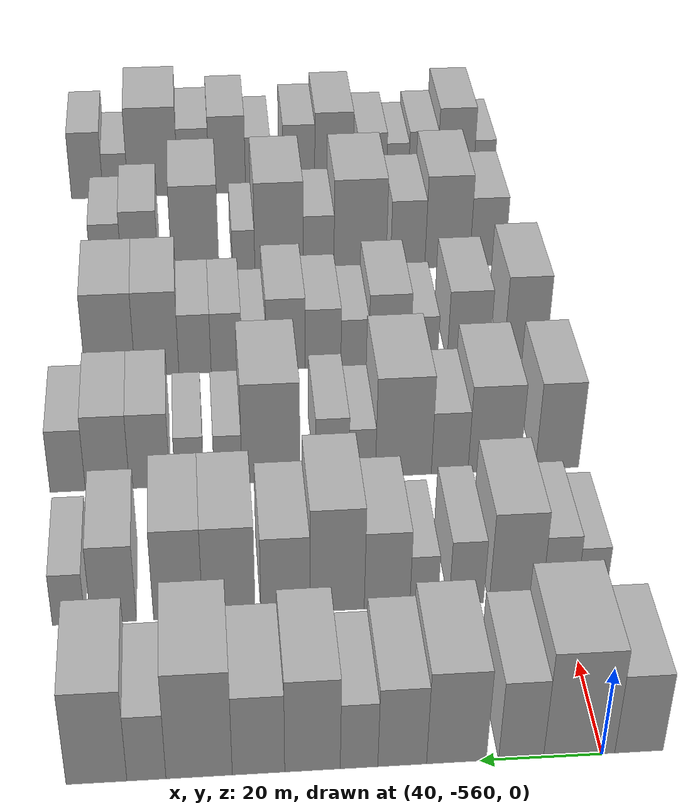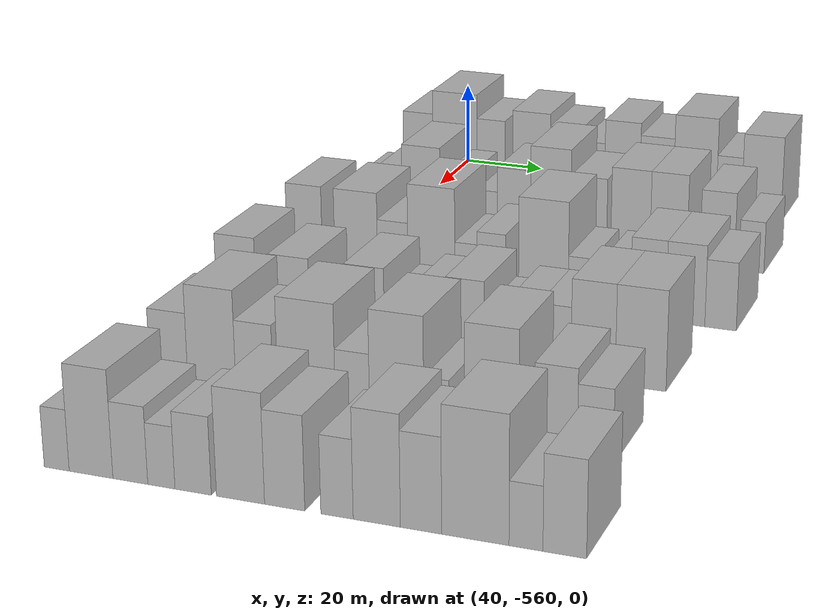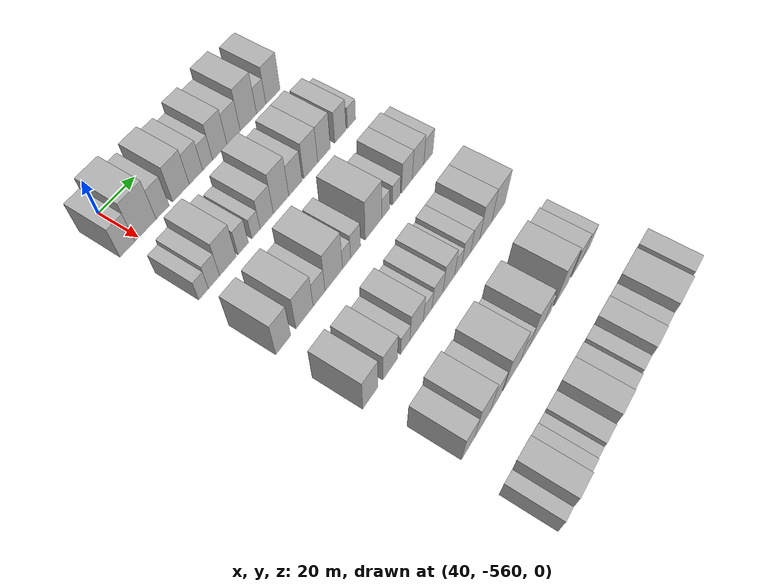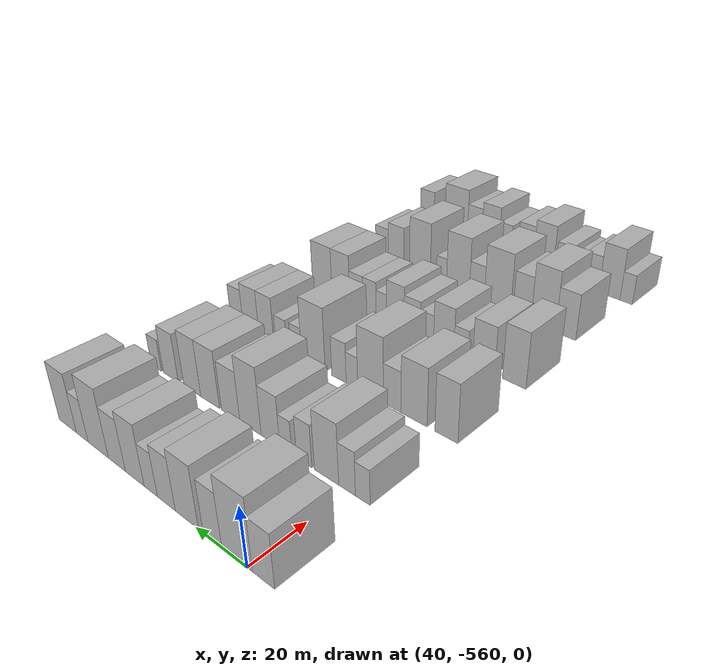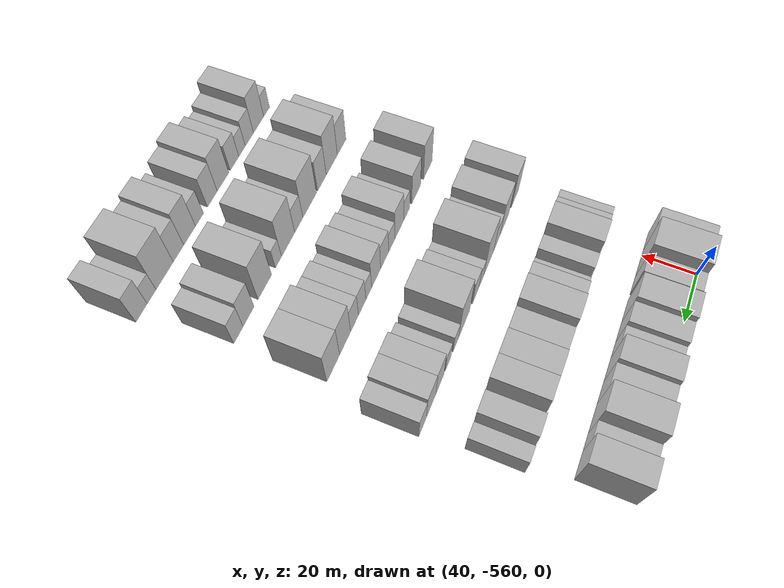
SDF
<sdf version="1.6">
 <world name="default">
  <model name="building_1">
   <static>1</static>
   <pose>50.0000 -566.0285 0 0.000000 0.000000 0.000000</pose>
   <link name="link">
    <pose>0 0 9.00 0 0 0</pose>
    <collision name="collision"><geometry><box><size>20.0000 7.9430 18.0000</size></box></geometry></collision>
    <visual name="visual">
     <cast_shadows>0</cast_shadows>
     <geometry><box><size>20.0000 7.9430 18.0000</size></box></geometry>
     <material>
      <script>
       <uri>model://HANNAS_wall/materials/scripts</uri>
       <uri>model://HANNAS_wall/materials/textures</uri>
       <name>vrc/HANNAS_wall</name>
      </script>
     </material>
    </visual>
   </link>
  </model>
  <model name="building_2">
   <static>1</static>
   <pose>50.0000 -556.2195 0 0.000000 0.000000 0.000000</pose>
   <link name="link">
    <pose>0 0 12.00 0 0 0</pose>
    <collision name="collision"><geometry><box><size>20.0000 11.6750 24.0000</size></box></geometry></collision>
    <visual name="visual">
     <cast_shadows>0</cast_shadows>
     <geometry><box><size>20.0000 11.6750 24.0000</size></box></geometry>
     <material>
      <script>
       <uri>model://HANNAS_wall/materials/scripts</uri>
       <uri>model://HANNAS_wall/materials/textures</uri>
       <name>vrc/HANNAS_wall</name>
      </script>
     </material>
    </visual>
   </link>
  </model>
  <model name="building_3">
   <static>1</static>
   <pose>50.0000 -546.7149 0 0.000000 0.000000 0.000000</pose>
   <link name="link">
    <pose>0 0 9.00 0 0 0</pose>
    <collision name="collision"><geometry><box><size>20.0000 7.3342 18.0000</size></box></geometry></collision>
    <visual name="visual">
     <cast_shadows>0</cast_shadows>
     <geometry><box><size>20.0000 7.3342 18.0000</size></box></geometry>
     <material>
      <script>
       <uri>model://HANNAS_wall/materials/scripts</uri>
       <uri>model://HANNAS_wall/materials/textures</uri>
       <name>vrc/HANNAS_wall</name>
      </script>
     </material>
    </visual>
   </link>
  </model>
  <model name="building_4">
   <static>1</static>
   <pose>50.0000 -536.1963 0 0.000000 0.000000 0.000000</pose>
   <link name="link">
    <pose>0 0 10.50 0 0 0</pose>
    <collision name="collision"><geometry><box><size>20.0000 9.7029 21.0000</size></box></geometry></collision>
    <visual name="visual">
     <cast_shadows>0</cast_shadows>
     <geometry><box><size>20.0000 9.7029 21.0000</size></box></geometry>
     <material>
      <script>
       <uri>model://HANNAS_wall/materials/scripts</uri>
       <uri>model://HANNAS_wall/materials/textures</uri>
       <name>vrc/HANNAS_wall</name>
      </script>
     </material>
    </visual>
   </link>
  </model>
  <model name="building_5">
   <static>1</static>
   <pose>50.0000 -527.3998 0 0.000000 0.000000 0.000000</pose>
   <link name="link">
    <pose>0 0 9.00 0 0 0</pose>
    <collision name="collision"><geometry><box><size>20.0000 7.8903 18.0000</size></box></geometry></collision>
    <visual name="visual">
     <cast_shadows>0</cast_shadows>
     <geometry><box><size>20.0000 7.8903 18.0000</size></box></geometry>
     <material>
      <script>
       <uri>model://HANNAS_wall/materials/scripts</uri>
       <uri>model://HANNAS_wall/materials/textures</uri>
       <name>vrc/HANNAS_wall</name>
      </script>
     </material>
    </visual>
   </link>
  </model>
  <model name="building_6">
   <static>1</static>
   <pose>50.0000 -520.4221 0 0.000000 0.000000 0.000000</pose>
   <link name="link">
    <pose>0 0 7.50 0 0 0</pose>
    <collision name="collision"><geometry><box><size>20.0000 6.0649 15.0000</size></box></geometry></collision>
    <visual name="visual">
     <cast_shadows>0</cast_shadows>
     <geometry><box><size>20.0000 6.0649 15.0000</size></box></geometry>
     <material>
      <script>
       <uri>model://HANNAS_wall/materials/scripts</uri>
       <uri>model://HANNAS_wall/materials/textures</uri>
       <name>vrc/HANNAS_wall</name>
      </script>
     </material>
    </visual>
   </link>
  </model>
  <model name="building_7">
   <static>1</static>
   <pose>50.0000 -512.9245 0 0.000000 0.000000 0.000000</pose>
   <link name="link">
    <pose>0 0 10.50 0 0 0</pose>
    <collision name="collision"><geometry><box><size>20.0000 8.9303 21.0000</size></box></geometry></collision>
    <visual name="visual">
     <cast_shadows>0</cast_shadows>
     <geometry><box><size>20.0000 8.9303 21.0000</size></box></geometry>
     <material>
      <script>
       <uri>model://HANNAS_wall/materials/scripts</uri>
       <uri>model://HANNAS_wall/materials/textures</uri>
       <name>vrc/HANNAS_wall</name>
      </script>
     </material>
    </visual>
   </link>
  </model>
  <model name="building_8">
   <static>1</static>
   <pose>50.0000 -504.2603 0 0.000000 0.000000 0.000000</pose>
   <link name="link">
    <pose>0 0 9.00 0 0 0</pose>
    <collision name="collision"><geometry><box><size>20.0000 8.3981 18.0000</size></box></geometry></collision>
    <visual name="visual">
     <cast_shadows>0</cast_shadows>
     <geometry><box><size>20.0000 8.3981 18.0000</size></box></geometry>
     <material>
      <script>
       <uri>model://HANNAS_wall/materials/scripts</uri>
       <uri>model://HANNAS_wall/materials/textures</uri>
       <name>vrc/HANNAS_wall</name>
      </script>
     </material>
    </visual>
   </link>
  </model>
  <model name="building_9">
   <static>1</static>
   <pose>50.0000 -494.7629 0 0.000000 0.000000 0.000000</pose>
   <link name="link">
    <pose>0 0 12.00 0 0 0</pose>
    <collision name="collision"><geometry><box><size>20.0000 10.5967 24.0000</size></box></geometry></collision>
    <visual name="visual">
     <cast_shadows>0</cast_shadows>
     <geometry><box><size>20.0000 10.5967 24.0000</size></box></geometry>
     <material>
      <script>
       <uri>model://HANNAS_wall/materials/scripts</uri>
       <uri>model://HANNAS_wall/materials/textures</uri>
       <name>vrc/HANNAS_wall</name>
      </script>
     </material>
    </visual>
   </link>
  </model>
  <model name="building_10">
   <static>1</static>
   <pose>50.0000 -486.3562 0 0.000000 0.000000 0.000000</pose>
   <link name="link">
    <pose>0 0 7.50 0 0 0</pose>
    <collision name="collision"><geometry><box><size>20.0000 6.2167 15.0000</size></box></geometry></collision>
    <visual name="visual">
     <cast_shadows>0</cast_shadows>
     <geometry><box><size>20.0000 6.2167 15.0000</size></box></geometry>
     <material>
      <script>
       <uri>model://HANNAS_wall/materials/scripts</uri>
       <uri>model://HANNAS_wall/materials/textures</uri>
       <name>vrc/HANNAS_wall</name>
      </script>
     </material>
    </visual>
   </link>
  </model>
  <model name="building_11">
   <static>1</static>
   <pose>50.0000 -478.4223 0 0.000000 0.000000 0.000000</pose>
   <link name="link">
    <pose>0 0 10.50 0 0 0</pose>
    <collision name="collision"><geometry><box><size>20.0000 9.6512 21.0000</size></box></geometry></collision>
    <visual name="visual">
     <cast_shadows>0</cast_shadows>
     <geometry><box><size>20.0000 9.6512 21.0000</size></box></geometry>
     <material>
      <script>
       <uri>model://HANNAS_wall/materials/scripts</uri>
       <uri>model://HANNAS_wall/materials/textures</uri>
       <name>vrc/HANNAS_wall</name>
      </script>
     </material>
    </visual>
   </link>
  </model>
  <model name="building_129">
   <static>1</static>
   <pose>85.0000 -565.3452 0 0.000000 0.000000 0.000000</pose>
   <link name="link">
    <pose>0 0 6.00 0 0 0</pose>
    <collision name="collision"><geometry><box><size>20.0000 5.3096 12.0000</size></box></geometry></collision>
    <visual name="visual">
     <cast_shadows>0</cast_shadows>
     <geometry><box><size>20.0000 5.3096 12.0000</size></box></geometry>
     <material>
      <script>
       <uri>model://HANNAS_wall/materials/scripts</uri>
       <uri>model://HANNAS_wall/materials/textures</uri>
       <name>vrc/HANNAS_wall</name>
      </script>
     </material>
    </visual>
   </link>
  </model>
  <model name="building_130">
   <static>1</static>
   <pose>85.0000 -559.5644 0 0.000000 0.000000 0.000000</pose>
   <link name="link">
    <pose>0 0 7.50 0 0 0</pose>
    <collision name="collision"><geometry><box><size>20.0000 6.2520 15.0000</size></box></geometry></collision>
    <visual name="visual">
     <cast_shadows>0</cast_shadows>
     <geometry><box><size>20.0000 6.2520 15.0000</size></box></geometry>
     <material>
      <script>
       <uri>model://HANNAS_wall/materials/scripts</uri>
       <uri>model://HANNAS_wall/materials/textures</uri>
       <name>vrc/HANNAS_wall</name>
      </script>
     </material>
    </visual>
   </link>
  </model>
  <model name="building_131">
   <static>1</static>
   <pose>85.0000 -551.7087 0 0.000000 0.000000 0.000000</pose>
   <link name="link">
    <pose>0 0 10.50 0 0 0</pose>
    <collision name="collision"><geometry><box><size>20.0000 9.4594 21.0000</size></box></geometry></collision>
    <visual name="visual">
     <cast_shadows>0</cast_shadows>
     <geometry><box><size>20.0000 9.4594 21.0000</size></box></geometry>
     <material>
      <script>
       <uri>model://HANNAS_wall/materials/scripts</uri>
       <uri>model://HANNAS_wall/materials/textures</uri>
       <name>vrc/HANNAS_wall</name>
      </script>
     </material>
    </visual>
   </link>
  </model>
  <model name="building_132">
   <static>1</static>
   <pose>85.0000 -542.8936 0 0.000000 0.000000 0.000000</pose>
   <link name="link">
    <pose>0 0 7.50 0 0 0</pose>
    <collision name="collision"><geometry><box><size>20.0000 6.1708 15.0000</size></box></geometry></collision>
    <visual name="visual">
     <cast_shadows>0</cast_shadows>
     <geometry><box><size>20.0000 6.1708 15.0000</size></box></geometry>
     <material>
      <script>
       <uri>model://HANNAS_wall/materials/scripts</uri>
       <uri>model://HANNAS_wall/materials/textures</uri>
       <name>vrc/HANNAS_wall</name>
      </script>
     </material>
    </visual>
   </link>
  </model>
  <model name="building_133">
   <static>1</static>
   <pose>85.0000 -535.3028 0 0.000000 0.000000 0.000000</pose>
   <link name="link">
    <pose>0 0 6.00 0 0 0</pose>
    <collision name="collision"><geometry><box><size>20.0000 5.0107 12.0000</size></box></geometry></collision>
    <visual name="visual">
     <cast_shadows>0</cast_shadows>
     <geometry><box><size>20.0000 5.0107 12.0000</size></box></geometry>
     <material>
      <script>
       <uri>model://HANNAS_wall/materials/scripts</uri>
       <uri>model://HANNAS_wall/materials/textures</uri>
       <name>vrc/HANNAS_wall</name>
      </script>
     </material>
    </visual>
   </link>
  </model>
  <model name="building_134">
   <static>1</static>
   <pose>85.0000 -528.7448 0 0.000000 0.000000 0.000000</pose>
   <link name="link">
    <pose>0 0 9.00 0 0 0</pose>
    <collision name="collision"><geometry><box><size>20.0000 8.1053 18.0000</size></box></geometry></collision>
    <visual name="visual">
     <cast_shadows>0</cast_shadows>
     <geometry><box><size>20.0000 8.1053 18.0000</size></box></geometry>
     <material>
      <script>
       <uri>model://HANNAS_wall/materials/scripts</uri>
       <uri>model://HANNAS_wall/materials/textures</uri>
       <name>vrc/HANNAS_wall</name>
      </script>
     </material>
    </visual>
   </link>
  </model>
  <model name="building_135">
   <static>1</static>
   <pose>85.0000 -519.8672 0 0.000000 0.000000 0.000000</pose>
   <link name="link">
    <pose>0 0 12.00 0 0 0</pose>
    <collision name="collision"><geometry><box><size>20.0000 9.6499 24.0000</size></box></geometry></collision>
    <visual name="visual">
     <cast_shadows>0</cast_shadows>
     <geometry><box><size>20.0000 9.6499 24.0000</size></box></geometry>
     <material>
      <script>
       <uri>model://HANNAS_wall/materials/scripts</uri>
       <uri>model://HANNAS_wall/materials/textures</uri>
       <name>vrc/HANNAS_wall</name>
      </script>
     </material>
    </visual>
   </link>
  </model>
  <model name="building_136">
   <static>1</static>
   <pose>85.0000 -510.7346 0 0.000000 0.000000 0.000000</pose>
   <link name="link">
    <pose>0 0 9.00 0 0 0</pose>
    <collision name="collision"><geometry><box><size>20.0000 8.6154 18.0000</size></box></geometry></collision>
    <visual name="visual">
     <cast_shadows>0</cast_shadows>
     <geometry><box><size>20.0000 8.6154 18.0000</size></box></geometry>
     <material>
      <script>
       <uri>model://HANNAS_wall/materials/scripts</uri>
       <uri>model://HANNAS_wall/materials/textures</uri>
       <name>vrc/HANNAS_wall</name>
      </script>
     </material>
    </visual>
   </link>
  </model>
  <model name="building_137">
   <static>1</static>
   <pose>85.0000 -500.8029 0 0.000000 0.000000 0.000000</pose>
   <link name="link">
    <pose>0 0 10.50 0 0 0</pose>
    <collision name="collision"><geometry><box><size>20.0000 9.2479 21.0000</size></box></geometry></collision>
    <visual name="visual">
     <cast_shadows>0</cast_shadows>
     <geometry><box><size>20.0000 9.2479 21.0000</size></box></geometry>
     <material>
      <script>
       <uri>model://HANNAS_wall/materials/scripts</uri>
       <uri>model://HANNAS_wall/materials/textures</uri>
       <name>vrc/HANNAS_wall</name>
      </script>
     </material>
    </visual>
   </link>
  </model>
  <model name="building_138">
   <static>1</static>
   <pose>85.0000 -491.8691 0 0.000000 0.000000 0.000000</pose>
   <link name="link">
    <pose>0 0 10.50 0 0 0</pose>
    <collision name="collision"><geometry><box><size>20.0000 8.6196 21.0000</size></box></geometry></collision>
    <visual name="visual">
     <cast_shadows>0</cast_shadows>
     <geometry><box><size>20.0000 8.6196 21.0000</size></box></geometry>
     <material>
      <script>
       <uri>model://HANNAS_wall/materials/scripts</uri>
       <uri>model://HANNAS_wall/materials/textures</uri>
       <name>vrc/HANNAS_wall</name>
      </script>
     </material>
    </visual>
   </link>
  </model>
  <model name="building_139">
   <static>1</static>
   <pose>85.0000 -480.5808 0 0.000000 0.000000 0.000000</pose>
   <link name="link">
    <pose>0 0 9.00 0 0 0</pose>
    <collision name="collision"><geometry><box><size>20.0000 7.9571 18.0000</size></box></geometry></collision>
    <visual name="visual">
     <cast_shadows>0</cast_shadows>
     <geometry><box><size>20.0000 7.9571 18.0000</size></box></geometry>
     <material>
      <script>
       <uri>model://HANNAS_wall/materials/scripts</uri>
       <uri>model://HANNAS_wall/materials/textures</uri>
       <name>vrc/HANNAS_wall</name>
      </script>
     </material>
    </visual>
   </link>
  </model>
  <model name="building_140">
   <static>1</static>
   <pose>85.0000 -472.7395 0 0.000000 0.000000 0.000000</pose>
   <link name="link">
    <pose>0 0 6.00 0 0 0</pose>
    <collision name="collision"><geometry><box><size>20.0000 5.7256 12.0000</size></box></geometry></collision>
    <visual name="visual">
     <cast_shadows>0</cast_shadows>
     <geometry><box><size>20.0000 5.7256 12.0000</size></box></geometry>
     <material>
      <script>
       <uri>model://HANNAS_wall/materials/scripts</uri>
       <uri>model://HANNAS_wall/materials/textures</uri>
       <name>vrc/HANNAS_wall</name>
      </script>
     </material>
    </visual>
   </link>
  </model>
  <model name="building_266">
   <static>1</static>
   <pose>120.0000 -565.7514 0 0.000000 0.000000 0.000000</pose>
   <link name="link">
    <pose>0 0 10.50 0 0 0</pose>
    <collision name="collision"><geometry><box><size>20.0000 8.4971 21.0000</size></box></geometry></collision>
    <visual name="visual">
     <cast_shadows>0</cast_shadows>
     <geometry><box><size>20.0000 8.4971 21.0000</size></box></geometry>
     <material>
      <script>
       <uri>model://HANNAS_wall/materials/scripts</uri>
       <uri>model://HANNAS_wall/materials/textures</uri>
       <name>vrc/HANNAS_wall</name>
      </script>
     </material>
    </visual>
   </link>
  </model>
  <model name="building_267">
   <static>1</static>
   <pose>120.0000 -553.4147 0 0.000000 0.000000 0.000000</pose>
   <link name="link">
    <pose>0 0 10.50 0 0 0</pose>
    <collision name="collision"><geometry><box><size>20.0000 10.1763 21.0000</size></box></geometry></collision>
    <visual name="visual">
     <cast_shadows>0</cast_shadows>
     <geometry><box><size>20.0000 10.1763 21.0000</size></box></geometry>
     <material>
      <script>
       <uri>model://HANNAS_wall/materials/scripts</uri>
       <uri>model://HANNAS_wall/materials/textures</uri>
       <name>vrc/HANNAS_wall</name>
      </script>
     </material>
    </visual>
   </link>
  </model>
  <model name="building_268">
   <static>1</static>
   <pose>120.0000 -544.7502 0 0.000000 0.000000 0.000000</pose>
   <link name="link">
    <pose>0 0 7.50 0 0 0</pose>
    <collision name="collision"><geometry><box><size>20.0000 7.1528 15.0000</size></box></geometry></collision>
    <visual name="visual">
     <cast_shadows>0</cast_shadows>
     <geometry><box><size>20.0000 7.1528 15.0000</size></box></geometry>
     <material>
      <script>
       <uri>model://HANNAS_wall/materials/scripts</uri>
       <uri>model://HANNAS_wall/materials/textures</uri>
       <name>vrc/HANNAS_wall</name>
      </script>
     </material>
    </visual>
   </link>
  </model>
  <model name="building_269">
   <static>1</static>
   <pose>120.0000 -535.7290 0 0.000000 0.000000 0.000000</pose>
   <link name="link">
    <pose>0 0 12.00 0 0 0</pose>
    <collision name="collision"><geometry><box><size>20.0000 10.8894 24.0000</size></box></geometry></collision>
    <visual name="visual">
     <cast_shadows>0</cast_shadows>
     <geometry><box><size>20.0000 10.8894 24.0000</size></box></geometry>
     <material>
      <script>
       <uri>model://HANNAS_wall/materials/scripts</uri>
       <uri>model://HANNAS_wall/materials/textures</uri>
       <name>vrc/HANNAS_wall</name>
      </script>
     </material>
    </visual>
   </link>
  </model>
  <model name="building_270">
   <static>1</static>
   <pose>120.0000 -527.7327 0 0.000000 0.000000 0.000000</pose>
   <link name="link">
    <pose>0 0 6.00 0 0 0</pose>
    <collision name="collision"><geometry><box><size>20.0000 5.1034 12.0000</size></box></geometry></collision>
    <visual name="visual">
     <cast_shadows>0</cast_shadows>
     <geometry><box><size>20.0000 5.1034 12.0000</size></box></geometry>
     <material>
      <script>
       <uri>model://HANNAS_wall/materials/scripts</uri>
       <uri>model://HANNAS_wall/materials/textures</uri>
       <name>vrc/HANNAS_wall</name>
      </script>
     </material>
    </visual>
   </link>
  </model>
  <model name="building_271">
   <static>1</static>
   <pose>120.0000 -521.9417 0 0.000000 0.000000 0.000000</pose>
   <link name="link">
    <pose>0 0 7.50 0 0 0</pose>
    <collision name="collision"><geometry><box><size>20.0000 6.4785 15.0000</size></box></geometry></collision>
    <visual name="visual">
     <cast_shadows>0</cast_shadows>
     <geometry><box><size>20.0000 6.4785 15.0000</size></box></geometry>
     <material>
      <script>
       <uri>model://HANNAS_wall/materials/scripts</uri>
       <uri>model://HANNAS_wall/materials/textures</uri>
       <name>vrc/HANNAS_wall</name>
      </script>
     </material>
    </visual>
   </link>
  </model>
  <model name="building_272">
   <static>1</static>
   <pose>120.0000 -510.1349 0 0.000000 0.000000 0.000000</pose>
   <link name="link">
    <pose>0 0 12.00 0 0 0</pose>
    <collision name="collision"><geometry><box><size>20.0000 11.1351 24.0000</size></box></geometry></collision>
    <visual name="visual">
     <cast_shadows>0</cast_shadows>
     <geometry><box><size>20.0000 11.1351 24.0000</size></box></geometry>
     <material>
      <script>
       <uri>model://HANNAS_wall/materials/scripts</uri>
       <uri>model://HANNAS_wall/materials/textures</uri>
       <name>vrc/HANNAS_wall</name>
      </script>
     </material>
    </visual>
   </link>
  </model>
  <model name="building_273">
   <static>1</static>
   <pose>120.0000 -501.9094 0 0.000000 0.000000 0.000000</pose>
   <link name="link">
    <pose>0 0 6.00 0 0 0</pose>
    <collision name="collision"><geometry><box><size>20.0000 5.3159 12.0000</size></box></geometry></collision>
    <visual name="visual">
     <cast_shadows>0</cast_shadows>
     <geometry><box><size>20.0000 5.3159 12.0000</size></box></geometry>
     <material>
      <script>
       <uri>model://HANNAS_wall/materials/scripts</uri>
       <uri>model://HANNAS_wall/materials/textures</uri>
       <name>vrc/HANNAS_wall</name>
      </script>
     </material>
    </visual>
   </link>
  </model>
  <model name="building_274">
   <static>1</static>
   <pose>120.0000 -494.5087 0 0.000000 0.000000 0.000000</pose>
   <link name="link">
    <pose>0 0 6.00 0 0 0</pose>
    <collision name="collision"><geometry><box><size>20.0000 5.4855 12.0000</size></box></geometry></collision>
    <visual name="visual">
     <cast_shadows>0</cast_shadows>
     <geometry><box><size>20.0000 5.4855 12.0000</size></box></geometry>
     <material>
      <script>
       <uri>model://HANNAS_wall/materials/scripts</uri>
       <uri>model://HANNAS_wall/materials/textures</uri>
       <name>vrc/HANNAS_wall</name>
      </script>
     </material>
    </visual>
   </link>
  </model>
  <model name="building_275">
   <static>1</static>
   <pose>120.0000 -486.8834 0 0.000000 0.000000 0.000000</pose>
   <link name="link">
    <pose>0 0 9.00 0 0 0</pose>
    <collision name="collision"><geometry><box><size>20.0000 7.7651 18.0000</size></box></geometry></collision>
    <visual name="visual">
     <cast_shadows>0</cast_shadows>
     <geometry><box><size>20.0000 7.7651 18.0000</size></box></geometry>
     <material>
      <script>
       <uri>model://HANNAS_wall/materials/scripts</uri>
       <uri>model://HANNAS_wall/materials/textures</uri>
       <name>vrc/HANNAS_wall</name>
      </script>
     </material>
    </visual>
   </link>
  </model>
  <model name="building_276">
   <static>1</static>
   <pose>120.0000 -478.7913 0 0.000000 0.000000 0.000000</pose>
   <link name="link">
    <pose>0 0 9.00 0 0 0</pose>
    <collision name="collision"><geometry><box><size>20.0000 8.4190 18.0000</size></box></geometry></collision>
    <visual name="visual">
     <cast_shadows>0</cast_shadows>
     <geometry><box><size>20.0000 8.4190 18.0000</size></box></geometry>
     <material>
      <script>
       <uri>model://HANNAS_wall/materials/scripts</uri>
       <uri>model://HANNAS_wall/materials/textures</uri>
       <name>vrc/HANNAS_wall</name>
      </script>
     </material>
    </visual>
   </link>
  </model>
  <model name="building_277">
   <static>1</static>
   <pose>120.0000 -471.2221 0 0.000000 0.000000 0.000000</pose>
   <link name="link">
    <pose>0 0 7.50 0 0 0</pose>
    <collision name="collision"><geometry><box><size>20.0000 6.7194 15.0000</size></box></geometry></collision>
    <visual name="visual">
     <cast_shadows>0</cast_shadows>
     <geometry><box><size>20.0000 6.7194 15.0000</size></box></geometry>
     <material>
      <script>
       <uri>model://HANNAS_wall/materials/scripts</uri>
       <uri>model://HANNAS_wall/materials/textures</uri>
       <name>vrc/HANNAS_wall</name>
      </script>
     </material>
    </visual>
   </link>
  </model>
  <model name="building_391">
   <static>1</static>
   <pose>155.0000 -565.4964 0 0.000000 0.000000 0.000000</pose>
   <link name="link">
    <pose>0 0 10.50 0 0 0</pose>
    <collision name="collision"><geometry><box><size>20.0000 9.0072 21.0000</size></box></geometry></collision>
    <visual name="visual">
     <cast_shadows>0</cast_shadows>
     <geometry><box><size>20.0000 9.0072 21.0000</size></box></geometry>
     <material>
      <script>
       <uri>model://HANNAS_wall/materials/scripts</uri>
       <uri>model://HANNAS_wall/materials/textures</uri>
       <name>vrc/HANNAS_wall</name>
      </script>
     </material>
    </visual>
   </link>
  </model>
  <model name="building_392">
   <static>1</static>
   <pose>155.0000 -553.5163 0 0.000000 0.000000 0.000000</pose>
   <link name="link">
    <pose>0 0 9.00 0 0 0</pose>
    <collision name="collision"><geometry><box><size>20.0000 8.9529 18.0000</size></box></geometry></collision>
    <visual name="visual">
     <cast_shadows>0</cast_shadows>
     <geometry><box><size>20.0000 8.9529 18.0000</size></box></geometry>
     <material>
      <script>
       <uri>model://HANNAS_wall/materials/scripts</uri>
       <uri>model://HANNAS_wall/materials/textures</uri>
       <name>vrc/HANNAS_wall</name>
      </script>
     </material>
    </visual>
   </link>
  </model>
  <model name="building_393">
   <static>1</static>
   <pose>155.0000 -544.1356 0 0.000000 0.000000 0.000000</pose>
   <link name="link">
    <pose>0 0 6.00 0 0 0</pose>
    <collision name="collision"><geometry><box><size>20.0000 5.8086 12.0000</size></box></geometry></collision>
    <visual name="visual">
     <cast_shadows>0</cast_shadows>
     <geometry><box><size>20.0000 5.8086 12.0000</size></box></geometry>
     <material>
      <script>
       <uri>model://HANNAS_wall/materials/scripts</uri>
       <uri>model://HANNAS_wall/materials/textures</uri>
       <name>vrc/HANNAS_wall</name>
      </script>
     </material>
    </visual>
   </link>
  </model>
  <model name="building_394">
   <static>1</static>
   <pose>155.0000 -536.8583 0 0.000000 0.000000 0.000000</pose>
   <link name="link">
    <pose>0 0 9.00 0 0 0</pose>
    <collision name="collision"><geometry><box><size>20.0000 8.7461 18.0000</size></box></geometry></collision>
    <visual name="visual">
     <cast_shadows>0</cast_shadows>
     <geometry><box><size>20.0000 8.7461 18.0000</size></box></geometry>
     <material>
      <script>
       <uri>model://HANNAS_wall/materials/scripts</uri>
       <uri>model://HANNAS_wall/materials/textures</uri>
       <name>vrc/HANNAS_wall</name>
      </script>
     </material>
    </visual>
   </link>
  </model>
  <model name="building_395">
   <static>1</static>
   <pose>155.0000 -529.5819 0 0.000000 0.000000 0.000000</pose>
   <link name="link">
    <pose>0 0 6.00 0 0 0</pose>
    <collision name="collision"><geometry><box><size>20.0000 5.8067 12.0000</size></box></geometry></collision>
    <visual name="visual">
     <cast_shadows>0</cast_shadows>
     <geometry><box><size>20.0000 5.8067 12.0000</size></box></geometry>
     <material>
      <script>
       <uri>model://HANNAS_wall/materials/scripts</uri>
       <uri>model://HANNAS_wall/materials/textures</uri>
       <name>vrc/HANNAS_wall</name>
      </script>
     </material>
    </visual>
   </link>
  </model>
  <model name="building_396">
   <static>1</static>
   <pose>155.0000 -522.9556 0 0.000000 0.000000 0.000000</pose>
   <link name="link">
    <pose>0 0 7.50 0 0 0</pose>
    <collision name="collision"><geometry><box><size>20.0000 7.4459 15.0000</size></box></geometry></collision>
    <visual name="visual">
     <cast_shadows>0</cast_shadows>
     <geometry><box><size>20.0000 7.4459 15.0000</size></box></geometry>
     <material>
      <script>
       <uri>model://HANNAS_wall/materials/scripts</uri>
       <uri>model://HANNAS_wall/materials/textures</uri>
       <name>vrc/HANNAS_wall</name>
      </script>
     </material>
    </visual>
   </link>
  </model>
  <model name="building_397">
   <static>1</static>
   <pose>155.0000 -515.1526 0 0.000000 0.000000 0.000000</pose>
   <link name="link">
    <pose>0 0 9.00 0 0 0</pose>
    <collision name="collision"><geometry><box><size>20.0000 8.1601 18.0000</size></box></geometry></collision>
    <visual name="visual">
     <cast_shadows>0</cast_shadows>
     <geometry><box><size>20.0000 8.1601 18.0000</size></box></geometry>
     <material>
      <script>
       <uri>model://HANNAS_wall/materials/scripts</uri>
       <uri>model://HANNAS_wall/materials/textures</uri>
       <name>vrc/HANNAS_wall</name>
      </script>
     </material>
    </visual>
   </link>
  </model>
  <model name="building_398">
   <static>1</static>
   <pose>155.0000 -508.5526 0 0.000000 0.000000 0.000000</pose>
   <link name="link">
    <pose>0 0 6.00 0 0 0</pose>
    <collision name="collision"><geometry><box><size>20.0000 5.0399 12.0000</size></box></geometry></collision>
    <visual name="visual">
     <cast_shadows>0</cast_shadows>
     <geometry><box><size>20.0000 5.0399 12.0000</size></box></geometry>
     <material>
      <script>
       <uri>model://HANNAS_wall/materials/scripts</uri>
       <uri>model://HANNAS_wall/materials/textures</uri>
       <name>vrc/HANNAS_wall</name>
      </script>
     </material>
    </visual>
   </link>
  </model>
  <model name="building_399">
   <static>1</static>
   <pose>155.0000 -502.8167 0 0.000000 0.000000 0.000000</pose>
   <link name="link">
    <pose>0 0 7.50 0 0 0</pose>
    <collision name="collision"><geometry><box><size>20.0000 6.4318 15.0000</size></box></geometry></collision>
    <visual name="visual">
     <cast_shadows>0</cast_shadows>
     <geometry><box><size>20.0000 6.4318 15.0000</size></box></geometry>
     <material>
      <script>
       <uri>model://HANNAS_wall/materials/scripts</uri>
       <uri>model://HANNAS_wall/materials/textures</uri>
       <name>vrc/HANNAS_wall</name>
      </script>
     </material>
    </visual>
   </link>
  </model>
  <model name="building_400">
   <static>1</static>
   <pose>155.0000 -496.2580 0 0.000000 0.000000 0.000000</pose>
   <link name="link">
    <pose>0 0 7.50 0 0 0</pose>
    <collision name="collision"><geometry><box><size>20.0000 6.6856 15.0000</size></box></geometry></collision>
    <visual name="visual">
     <cast_shadows>0</cast_shadows>
     <geometry><box><size>20.0000 6.6856 15.0000</size></box></geometry>
     <material>
      <script>
       <uri>model://HANNAS_wall/materials/scripts</uri>
       <uri>model://HANNAS_wall/materials/textures</uri>
       <name>vrc/HANNAS_wall</name>
      </script>
     </material>
    </visual>
   </link>
  </model>
  <model name="building_401">
   <static>1</static>
   <pose>155.0000 -488.3630 0 0.000000 0.000000 0.000000</pose>
   <link name="link">
    <pose>0 0 10.50 0 0 0</pose>
    <collision name="collision"><geometry><box><size>20.0000 9.1043 21.0000</size></box></geometry></collision>
    <visual name="visual">
     <cast_shadows>0</cast_shadows>
     <geometry><box><size>20.0000 9.1043 21.0000</size></box></geometry>
     <material>
      <script>
       <uri>model://HANNAS_wall/materials/scripts</uri>
       <uri>model://HANNAS_wall/materials/textures</uri>
       <name>vrc/HANNAS_wall</name>
      </script>
     </material>
    </visual>
   </link>
  </model>
  <model name="building_402">
   <static>1</static>
   <pose>155.0000 -478.6676 0 0.000000 0.000000 0.000000</pose>
   <link name="link">
    <pose>0 0 10.50 0 0 0</pose>
    <collision name="collision"><geometry><box><size>20.0000 10.2865 21.0000</size></box></geometry></collision>
    <visual name="visual">
     <cast_shadows>0</cast_shadows>
     <geometry><box><size>20.0000 10.2865 21.0000</size></box></geometry>
     <material>
      <script>
       <uri>model://HANNAS_wall/materials/scripts</uri>
       <uri>model://HANNAS_wall/materials/textures</uri>
       <name>vrc/HANNAS_wall</name>
      </script>
     </material>
    </visual>
   </link>
  </model>
  <model name="building_520">
   <static>1</static>
   <pose>190.0000 -562.9608 0 0.000000 0.000000 0.000000</pose>
   <link name="link">
    <pose>0 0 9.00 0 0 0</pose>
    <collision name="collision"><geometry><box><size>20.0000 8.0785 18.0000</size></box></geometry></collision>
    <visual name="visual">
     <cast_shadows>0</cast_shadows>
     <geometry><box><size>20.0000 8.0785 18.0000</size></box></geometry>
     <material>
      <script>
       <uri>model://HANNAS_wall/materials/scripts</uri>
       <uri>model://HANNAS_wall/materials/textures</uri>
       <name>vrc/HANNAS_wall</name>
      </script>
     </material>
    </visual>
   </link>
  </model>
  <model name="building_521">
   <static>1</static>
   <pose>190.0000 -553.8332 0 0.000000 0.000000 0.000000</pose>
   <link name="link">
    <pose>0 0 12.00 0 0 0</pose>
    <collision name="collision"><geometry><box><size>20.0000 10.1767 24.0000</size></box></geometry></collision>
    <visual name="visual">
     <cast_shadows>0</cast_shadows>
     <geometry><box><size>20.0000 10.1767 24.0000</size></box></geometry>
     <material>
      <script>
       <uri>model://HANNAS_wall/materials/scripts</uri>
       <uri>model://HANNAS_wall/materials/textures</uri>
       <name>vrc/HANNAS_wall</name>
      </script>
     </material>
    </visual>
   </link>
  </model>
  <model name="building_522">
   <static>1</static>
   <pose>190.0000 -544.8478 0 0.000000 0.000000 0.000000</pose>
   <link name="link">
    <pose>0 0 9.00 0 0 0</pose>
    <collision name="collision"><geometry><box><size>20.0000 7.7941 18.0000</size></box></geometry></collision>
    <visual name="visual">
     <cast_shadows>0</cast_shadows>
     <geometry><box><size>20.0000 7.7941 18.0000</size></box></geometry>
     <material>
      <script>
       <uri>model://HANNAS_wall/materials/scripts</uri>
       <uri>model://HANNAS_wall/materials/textures</uri>
       <name>vrc/HANNAS_wall</name>
      </script>
     </material>
    </visual>
   </link>
  </model>
  <model name="building_523">
   <static>1</static>
   <pose>190.0000 -534.0508 0 0.000000 0.000000 0.000000</pose>
   <link name="link">
    <pose>0 0 12.00 0 0 0</pose>
    <collision name="collision"><geometry><box><size>20.0000 11.8000 24.0000</size></box></geometry></collision>
    <visual name="visual">
     <cast_shadows>0</cast_shadows>
     <geometry><box><size>20.0000 11.8000 24.0000</size></box></geometry>
     <material>
      <script>
       <uri>model://HANNAS_wall/materials/scripts</uri>
       <uri>model://HANNAS_wall/materials/textures</uri>
       <name>vrc/HANNAS_wall</name>
      </script>
     </material>
    </visual>
   </link>
  </model>
  <model name="building_524">
   <static>1</static>
   <pose>190.0000 -524.6913 0 0.000000 0.000000 0.000000</pose>
   <link name="link">
    <pose>0 0 7.50 0 0 0</pose>
    <collision name="collision"><geometry><box><size>20.0000 6.9191 15.0000</size></box></geometry></collision>
    <visual name="visual">
     <cast_shadows>0</cast_shadows>
     <geometry><box><size>20.0000 6.9191 15.0000</size></box></geometry>
     <material>
      <script>
       <uri>model://HANNAS_wall/materials/scripts</uri>
       <uri>model://HANNAS_wall/materials/textures</uri>
       <name>vrc/HANNAS_wall</name>
      </script>
     </material>
    </visual>
   </link>
  </model>
  <model name="building_525">
   <static>1</static>
   <pose>190.0000 -515.8108 0 0.000000 0.000000 0.000000</pose>
   <link name="link">
    <pose>0 0 12.00 0 0 0</pose>
    <collision name="collision"><geometry><box><size>20.0000 10.8419 24.0000</size></box></geometry></collision>
    <visual name="visual">
     <cast_shadows>0</cast_shadows>
     <geometry><box><size>20.0000 10.8419 24.0000</size></box></geometry>
     <material>
      <script>
       <uri>model://HANNAS_wall/materials/scripts</uri>
       <uri>model://HANNAS_wall/materials/textures</uri>
       <name>vrc/HANNAS_wall</name>
      </script>
     </material>
    </visual>
   </link>
  </model>
  <model name="building_526">
   <static>1</static>
   <pose>190.0000 -507.8895 0 0.000000 0.000000 0.000000</pose>
   <link name="link">
    <pose>0 0 6.00 0 0 0</pose>
    <collision name="collision"><geometry><box><size>20.0000 5.0006 12.0000</size></box></geometry></collision>
    <visual name="visual">
     <cast_shadows>0</cast_shadows>
     <geometry><box><size>20.0000 5.0006 12.0000</size></box></geometry>
     <material>
      <script>
       <uri>model://HANNAS_wall/materials/scripts</uri>
       <uri>model://HANNAS_wall/materials/textures</uri>
       <name>vrc/HANNAS_wall</name>
      </script>
     </material>
    </visual>
   </link>
  </model>
  <model name="building_527">
   <static>1</static>
   <pose>190.0000 -497.1279 0 0.000000 0.000000 0.000000</pose>
   <link name="link">
    <pose>0 0 12.00 0 0 0</pose>
    <collision name="collision"><geometry><box><size>20.0000 10.5227 24.0000</size></box></geometry></collision>
    <visual name="visual">
     <cast_shadows>0</cast_shadows>
     <geometry><box><size>20.0000 10.5227 24.0000</size></box></geometry>
     <material>
      <script>
       <uri>model://HANNAS_wall/materials/scripts</uri>
       <uri>model://HANNAS_wall/materials/textures</uri>
       <name>vrc/HANNAS_wall</name>
      </script>
     </material>
    </visual>
   </link>
  </model>
  <model name="building_528">
   <static>1</static>
   <pose>190.0000 -484.7870 0 0.000000 0.000000 0.000000</pose>
   <link name="link">
    <pose>0 0 9.00 0 0 0</pose>
    <collision name="collision"><geometry><box><size>20.0000 8.1590 18.0000</size></box></geometry></collision>
    <visual name="visual">
     <cast_shadows>0</cast_shadows>
     <geometry><box><size>20.0000 8.1590 18.0000</size></box></geometry>
     <material>
      <script>
       <uri>model://HANNAS_wall/materials/scripts</uri>
       <uri>model://HANNAS_wall/materials/textures</uri>
       <name>vrc/HANNAS_wall</name>
      </script>
     </material>
    </visual>
   </link>
  </model>
  <model name="building_529">
   <static>1</static>
   <pose>190.0000 -477.3109 0 0.000000 0.000000 0.000000</pose>
   <link name="link">
    <pose>0 0 7.50 0 0 0</pose>
    <collision name="collision"><geometry><box><size>20.0000 6.7932 15.0000</size></box></geometry></collision>
    <visual name="visual">
     <cast_shadows>0</cast_shadows>
     <geometry><box><size>20.0000 6.7932 15.0000</size></box></geometry>
     <material>
      <script>
       <uri>model://HANNAS_wall/materials/scripts</uri>
       <uri>model://HANNAS_wall/materials/textures</uri>
       <name>vrc/HANNAS_wall</name>
      </script>
     </material>
    </visual>
   </link>
  </model>
  <model name="building_648">
   <static>1</static>
   <pose>225.0000 -567.4641 0 0.000000 0.000000 0.000000</pose>
   <link name="link">
    <pose>0 0 6.00 0 0 0</pose>
    <collision name="collision"><geometry><box><size>20.0000 5.0717 12.0000</size></box></geometry></collision>
    <visual name="visual">
     <cast_shadows>0</cast_shadows>
     <geometry><box><size>20.0000 5.0717 12.0000</size></box></geometry>
     <material>
      <script>
       <uri>model://HANNAS_wall/materials/scripts</uri>
       <uri>model://HANNAS_wall/materials/textures</uri>
       <name>vrc/HANNAS_wall</name>
      </script>
     </material>
    </visual>
   </link>
  </model>
  <model name="building_649">
   <static>1</static>
   <pose>225.0000 -560.5181 0 0.000000 0.000000 0.000000</pose>
   <link name="link">
    <pose>0 0 10.50 0 0 0</pose>
    <collision name="collision"><geometry><box><size>20.0000 8.8202 21.0000</size></box></geometry></collision>
    <visual name="visual">
     <cast_shadows>0</cast_shadows>
     <geometry><box><size>20.0000 8.8202 21.0000</size></box></geometry>
     <material>
      <script>
       <uri>model://HANNAS_wall/materials/scripts</uri>
       <uri>model://HANNAS_wall/materials/textures</uri>
       <name>vrc/HANNAS_wall</name>
      </script>
     </material>
    </visual>
   </link>
  </model>
  <model name="building_650">
   <static>1</static>
   <pose>225.0000 -552.6339 0 0.000000 0.000000 0.000000</pose>
   <link name="link">
    <pose>0 0 7.50 0 0 0</pose>
    <collision name="collision"><geometry><box><size>20.0000 6.9482 15.0000</size></box></geometry></collision>
    <visual name="visual">
     <cast_shadows>0</cast_shadows>
     <geometry><box><size>20.0000 6.9482 15.0000</size></box></geometry>
     <material>
      <script>
       <uri>model://HANNAS_wall/materials/scripts</uri>
       <uri>model://HANNAS_wall/materials/textures</uri>
       <name>vrc/HANNAS_wall</name>
      </script>
     </material>
    </visual>
   </link>
  </model>
  <model name="building_651">
   <static>1</static>
   <pose>225.0000 -546.4757 0 0.000000 0.000000 0.000000</pose>
   <link name="link">
    <pose>0 0 6.00 0 0 0</pose>
    <collision name="collision"><geometry><box><size>20.0000 5.3682 12.0000</size></box></geometry></collision>
    <visual name="visual">
     <cast_shadows>0</cast_shadows>
     <geometry><box><size>20.0000 5.3682 12.0000</size></box></geometry>
     <material>
      <script>
       <uri>model://HANNAS_wall/materials/scripts</uri>
       <uri>model://HANNAS_wall/materials/textures</uri>
       <name>vrc/HANNAS_wall</name>
      </script>
     </material>
    </visual>
   </link>
  </model>
  <model name="building_652">
   <static>1</static>
   <pose>225.0000 -540.2495 0 0.000000 0.000000 0.000000</pose>
   <link name="link">
    <pose>0 0 7.50 0 0 0</pose>
    <collision name="collision"><geometry><box><size>20.0000 7.0842 15.0000</size></box></geometry></collision>
    <visual name="visual">
     <cast_shadows>0</cast_shadows>
     <geometry><box><size>20.0000 7.0842 15.0000</size></box></geometry>
     <material>
      <script>
       <uri>model://HANNAS_wall/materials/scripts</uri>
       <uri>model://HANNAS_wall/materials/textures</uri>
       <name>vrc/HANNAS_wall</name>
      </script>
     </material>
    </visual>
   </link>
  </model>
  <model name="building_653">
   <static>1</static>
   <pose>225.0000 -531.0886 0 0.000000 0.000000 0.000000</pose>
   <link name="link">
    <pose>0 0 10.50 0 0 0</pose>
    <collision name="collision"><geometry><box><size>20.0000 9.2376 21.0000</size></box></geometry></collision>
    <visual name="visual">
     <cast_shadows>0</cast_shadows>
     <geometry><box><size>20.0000 9.2376 21.0000</size></box></geometry>
     <material>
      <script>
       <uri>model://HANNAS_wall/materials/scripts</uri>
       <uri>model://HANNAS_wall/materials/textures</uri>
       <name>vrc/HANNAS_wall</name>
      </script>
     </material>
    </visual>
   </link>
  </model>
  <model name="building_654">
   <static>1</static>
   <pose>225.0000 -522.6579 0 0.000000 0.000000 0.000000</pose>
   <link name="link">
    <pose>0 0 9.00 0 0 0</pose>
    <collision name="collision"><geometry><box><size>20.0000 7.6237 18.0000</size></box></geometry></collision>
    <visual name="visual">
     <cast_shadows>0</cast_shadows>
     <geometry><box><size>20.0000 7.6237 18.0000</size></box></geometry>
     <material>
      <script>
       <uri>model://HANNAS_wall/materials/scripts</uri>
       <uri>model://HANNAS_wall/materials/textures</uri>
       <name>vrc/HANNAS_wall</name>
      </script>
     </material>
    </visual>
   </link>
  </model>
  <model name="building_655">
   <static>1</static>
   <pose>225.0000 -512.8359 0 0.000000 0.000000 0.000000</pose>
   <link name="link">
    <pose>0 0 7.50 0 0 0</pose>
    <collision name="collision"><geometry><box><size>20.0000 6.0203 15.0000</size></box></geometry></collision>
    <visual name="visual">
     <cast_shadows>0</cast_shadows>
     <geometry><box><size>20.0000 6.0203 15.0000</size></box></geometry>
     <material>
      <script>
       <uri>model://HANNAS_wall/materials/scripts</uri>
       <uri>model://HANNAS_wall/materials/textures</uri>
       <name>vrc/HANNAS_wall</name>
      </script>
     </material>
    </visual>
   </link>
  </model>
  <model name="building_656">
   <static>1</static>
   <pose>225.0000 -505.4838 0 0.000000 0.000000 0.000000</pose>
   <link name="link">
    <pose>0 0 10.50 0 0 0</pose>
    <collision name="collision"><geometry><box><size>20.0000 8.6840 21.0000</size></box></geometry></collision>
    <visual name="visual">
     <cast_shadows>0</cast_shadows>
     <geometry><box><size>20.0000 8.6840 21.0000</size></box></geometry>
     <material>
      <script>
       <uri>model://HANNAS_wall/materials/scripts</uri>
       <uri>model://HANNAS_wall/materials/textures</uri>
       <name>vrc/HANNAS_wall</name>
      </script>
     </material>
    </visual>
   </link>
  </model>
  <model name="building_657">
   <static>1</static>
   <pose>225.0000 -497.4069 0 0.000000 0.000000 0.000000</pose>
   <link name="link">
    <pose>0 0 9.00 0 0 0</pose>
    <collision name="collision"><geometry><box><size>20.0000 7.4697 18.0000</size></box></geometry></collision>
    <visual name="visual">
     <cast_shadows>0</cast_shadows>
     <geometry><box><size>20.0000 7.4697 18.0000</size></box></geometry>
     <material>
      <script>
       <uri>model://HANNAS_wall/materials/scripts</uri>
       <uri>model://HANNAS_wall/materials/textures</uri>
       <name>vrc/HANNAS_wall</name>
      </script>
     </material>
    </visual>
   </link>
  </model>
  <model name="building_658">
   <static>1</static>
   <pose>225.0000 -487.6769 0 0.000000 0.000000 0.000000</pose>
   <link name="link">
    <pose>0 0 12.00 0 0 0</pose>
    <collision name="collision"><geometry><box><size>20.0000 11.9905 24.0000</size></box></geometry></collision>
    <visual name="visual">
     <cast_shadows>0</cast_shadows>
     <geometry><box><size>20.0000 11.9905 24.0000</size></box></geometry>
     <material>
      <script>
       <uri>model://HANNAS_wall/materials/scripts</uri>
       <uri>model://HANNAS_wall/materials/textures</uri>
       <name>vrc/HANNAS_wall</name>
      </script>
     </material>
    </visual>
   </link>
  </model>
  <model name="building_659">
   <static>1</static>
   <pose>225.0000 -478.7047 0 0.000000 0.000000 0.000000</pose>
   <link name="link">
    <pose>0 0 6.00 0 0 0</pose>
    <collision name="collision"><geometry><box><size>20.0000 5.9539 12.0000</size></box></geometry></collision>
    <visual name="visual">
     <cast_shadows>0</cast_shadows>
     <geometry><box><size>20.0000 5.9539 12.0000</size></box></geometry>
     <material>
      <script>
       <uri>model://HANNAS_wall/materials/scripts</uri>
       <uri>model://HANNAS_wall/materials/textures</uri>
       <name>vrc/HANNAS_wall</name>
      </script>
     </material>
    </visual>
   </link>
  </model>
  <model name="building_660">
   <static>1</static>
   <pose>225.0000 -471.9439 0 0.000000 0.000000 0.000000</pose>
   <link name="link">
    <pose>0 0 9.00 0 0 0</pose>
    <collision name="collision"><geometry><box><size>20.0000 7.5677 18.0000</size></box></geometry></collision>
    <visual name="visual">
     <cast_shadows>0</cast_shadows>
     <geometry><box><size>20.0000 7.5677 18.0000</size></box></geometry>
     <material>
      <script>
       <uri>model://HANNAS_wall/materials/scripts</uri>
       <uri>model://HANNAS_wall/materials/textures</uri>
       <name>vrc/HANNAS_wall</name>
      </script>
     </material>
    </visual>
   </link>
  </model>
 </world>
</sdf>
